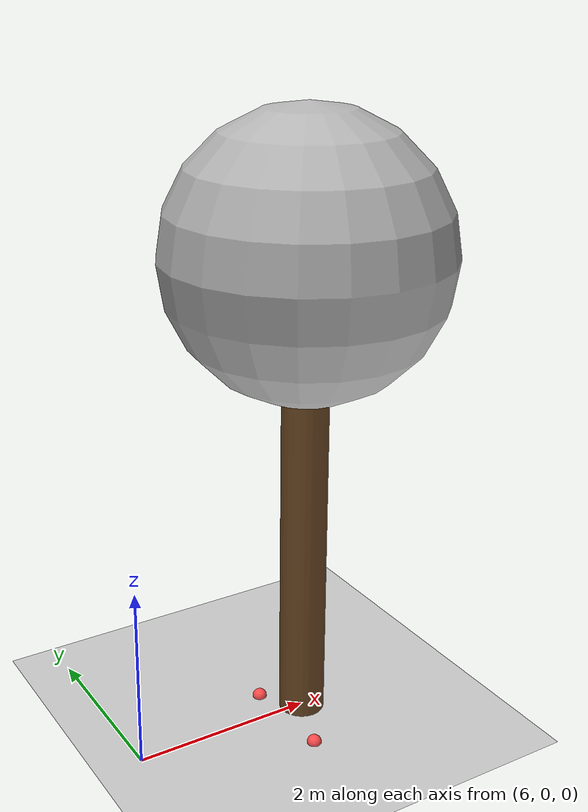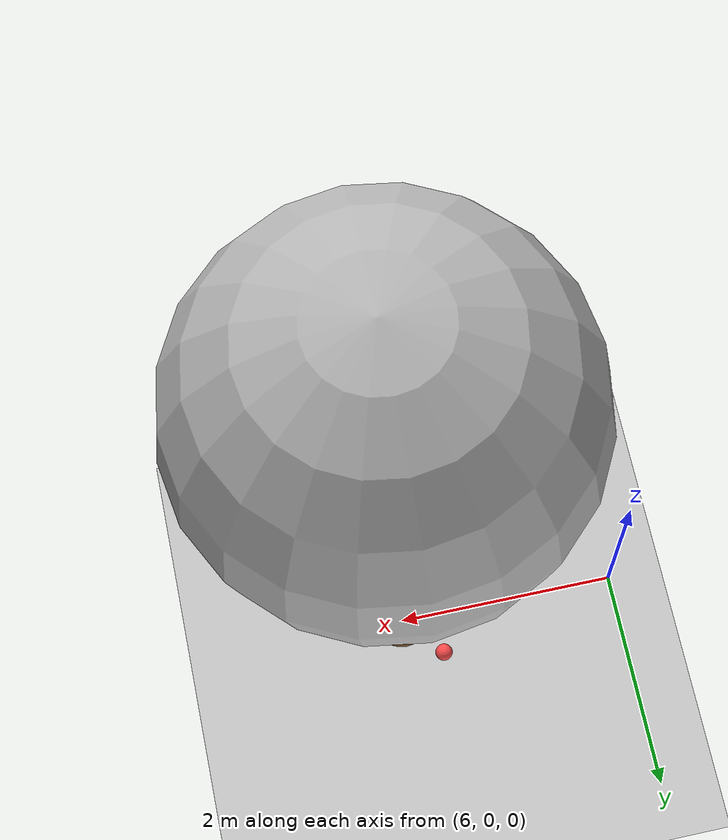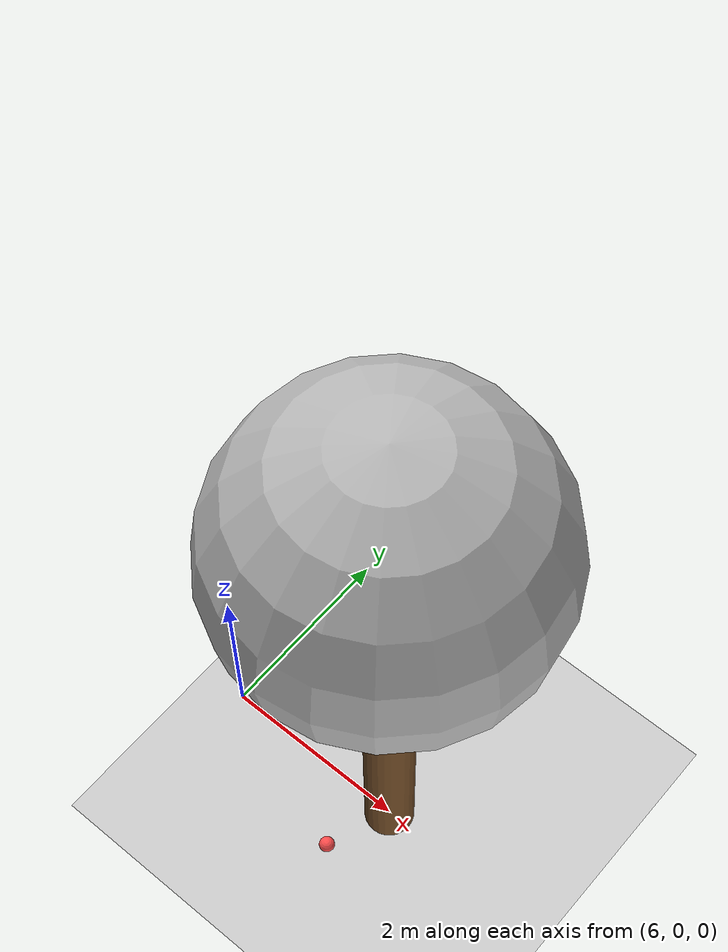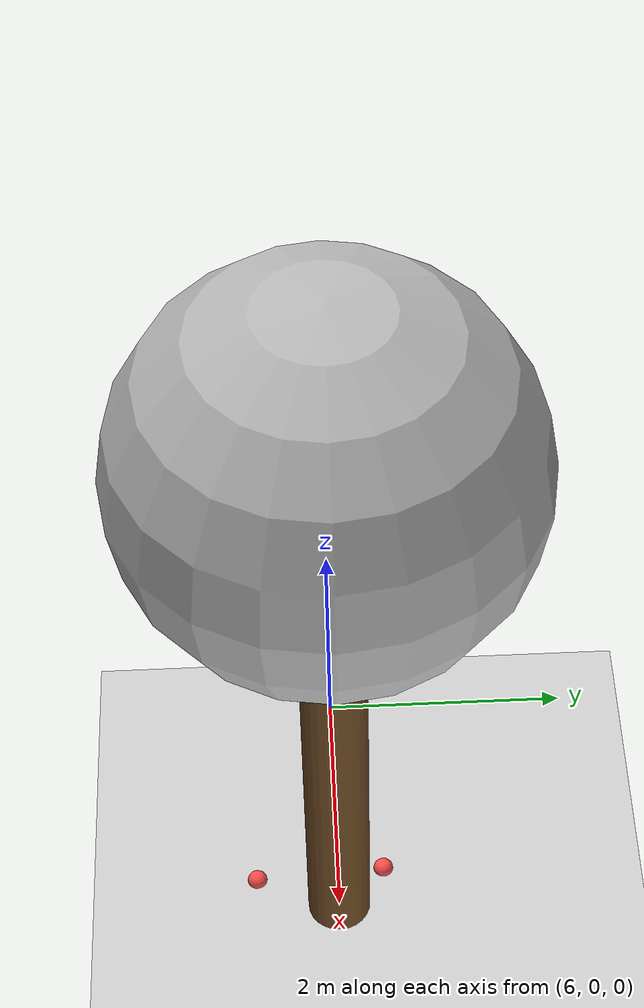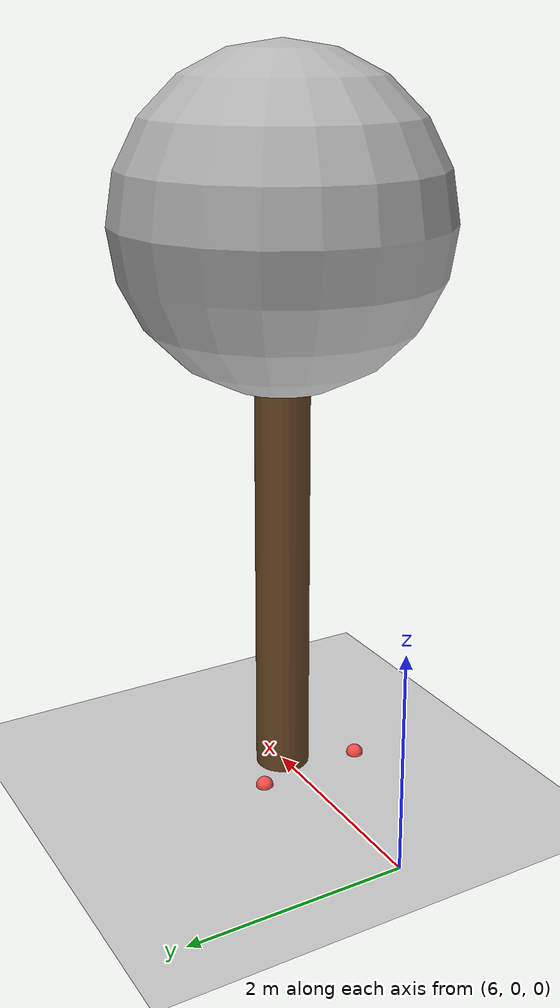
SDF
<sdf version="1.7">
 <world name="default">
  <model name="ground_plane">
   <static>1</static>
   <link name="link">
    <collision name="collision">
     <geometry><plane><normal>0 0 1</normal><size>100 100</size></plane></geometry>
     <surface>
      <contact><collide_bitmask>65535</collide_bitmask></contact>
      <friction><ode><mu>100</mu><mu2>50</mu2></ode></friction>
     </surface>
    </collision>
    <visual name="visual">
     <cast_shadows>0</cast_shadows>
     <geometry><plane><normal>0 0 1</normal><size>100 100</size></plane></geometry>
     <material>
      <script><uri>file://media/materials/scripts/gazebo.material</uri><name>Gazebo/Grey</name></script>
     </material>
    </visual>
   </link>
  </model>
  <model name="tree_simple_98">
   <static>1</static>
   <link name="link">
    <pose>0 0 0.1 0 -0 0</pose>
    <inertial>
     <mass>666</mass>
     <inertia>
      <ixx>0.0861167</ixx>
      <ixy>0</ixy>
      <ixz>0</ixz>
      <iyy>0.0861167</iyy>
      <iyz>0</iyz>
      <izz>0.0861167</izz>
     </inertia>
    </inertial>
    <collision name="collision_trunk">
     <pose>0 0 2 0 -0 0</pose>
     <geometry><cylinder><radius>0.25</radius><length>4</length></cylinder></geometry>
     <surface>
      <contact>
       <poissons_ratio>0.347</poissons_ratio>
       <elastic_modulus>8.8e+09</elastic_modulus>
       <ode><kp>100000</kp><kd>100</kd><max_vel>100</max_vel><min_depth>0.001</min_depth></ode>
      </contact>
      <friction>
       <torsional>
        <coefficient>1</coefficient>
        <use_patch_radius>0</use_patch_radius>
        <surface_radius>0.01</surface_radius>
       </torsional>
      </friction>
     </surface>
    </collision>
    <collision name="collision_treetop">
     <pose>0 0 5.2 0 -0 0</pose>
     <geometry><sphere><radius>1.5</radius></sphere></geometry>
     <surface>
      <contact>
       <poissons_ratio>0.347</poissons_ratio>
       <elastic_modulus>8.8e+09</elastic_modulus>
       <ode><kp>100000</kp><kd>100</kd><max_vel>100</max_vel><min_depth>0.001</min_depth></ode>
      </contact>
      <friction>
       <torsional>
        <coefficient>1</coefficient>
        <use_patch_radius>0</use_patch_radius>
        <surface_radius>0.01</surface_radius>
       </torsional>
      </friction>
     </surface>
    </collision>
    <visual name="trunk">
     <pose>0 0 2 0 -0 0</pose>
     <geometry><cylinder><radius>0.25</radius><length>4</length></cylinder></geometry>
     <material>
      <script>
       <uri>model://tree_simple/scripts</uri>
       <uri>model://tree_simple/materials/textures</uri>
       <name>TreeSimple/Trunk</name>
      </script>
     </material>
    </visual>
    <visual name="treetop">
     <pose>0 0 5.2 0 -0 0</pose>
     <geometry><sphere><radius>1.5</radius></sphere></geometry>
     <material>
      <script>
       <uri>model://tree_simple/scripts</uri>
       <uri>model://tree_simple/materials/textures</uri>
       <name>TreeSimple/Treetop</name>
      </script>
     </material>
    </visual>
   </link>
   <pose>8 0 -0.1 0 -0 0</pose>
  </model>
  <model name="seed_red_396">
   <link name="link">
    <inertial>
     <mass>1</mass>
     <inertia><ixx>0.1</ixx><ixy>0</ixy><ixz>0</ixz><iyy>0.1</iyy><iyz>0</iyz><izz>0.1</izz></inertia>
    </inertial>
    <visual name="visual">
     <geometry><sphere><radius>0.08</radius></sphere></geometry>
     <material>
      <script><name>Gazebo/Grey</name><uri>file://media/materials/scripts/gazebo.material</uri></script>
      <shader type="pixel"><normal_map>__default__</normal_map></shader>
      <ambient>1 0.3 0.3 1</ambient>
      <diffuse>0.7 0.7 0.7 1</diffuse>
      <specular>0.01 0.01 0.01 1</specular>
      <emissive>0 0 0 1</emissive>
     </material>
    </visual>
    <collision name="collision">
     <geometry><sphere><radius>0.0005</radius></sphere></geometry>
     <surface>
      <friction>
       <ode><mu>1</mu><mu2>1</mu2><fdir1>0 0 0</fdir1><slip1>0</slip1><slip2>0</slip2></ode>
       <torsional>
        <coefficient>1</coefficient>
        <patch_radius>0</patch_radius>
        <surface_radius>0</surface_radius>
        <use_patch_radius>1</use_patch_radius>
        <ode><slip>0</slip></ode>
       </torsional>
      </friction>
      <bounce><restitution_coefficient>0</restitution_coefficient><threshold>1e+06</threshold></bounce>
      <contact>
       <collide_without_contact>0</collide_without_contact>
       <collide_without_contact_bitmask>1</collide_without_contact_bitmask>
       <collide_bitmask>1</collide_bitmask>
       <ode>
        <soft_cfm>0</soft_cfm>
        <soft_erp>0.2</soft_erp>
        <kp>1e+13</kp>
        <kd>1</kd>
        <max_vel>0.01</max_vel>
        <min_depth>0</min_depth>
       </ode>
       <bullet>
        <split_impulse>1</split_impulse>
        <split_impulse_penetration_threshold>-0.01</split_impulse_penetration_threshold>
        <soft_cfm>0</soft_cfm>
        <soft_erp>0.2</soft_erp>
        <kp>1e+13</kp>
        <kd>1</kd>
       </bullet>
      </contact>
     </surface>
    </collision>
   </link>
   <static>0</static>
   <pose>7.67556 0.377008 0.0005 0 -0 0</pose>
  </model>
  <model name="seed_red_399">
   <link name="link">
    <inertial>
     <mass>1</mass>
     <inertia><ixx>0.1</ixx><ixy>0</ixy><ixz>0</ixz><iyy>0.1</iyy><iyz>0</iyz><izz>0.1</izz></inertia>
    </inertial>
    <visual name="visual">
     <geometry><sphere><radius>0.08</radius></sphere></geometry>
     <material>
      <script><name>Gazebo/Grey</name><uri>file://media/materials/scripts/gazebo.material</uri></script>
      <shader type="pixel"><normal_map>__default__</normal_map></shader>
      <ambient>1 0.3 0.3 1</ambient>
      <diffuse>0.7 0.7 0.7 1</diffuse>
      <specular>0.01 0.01 0.01 1</specular>
      <emissive>0 0 0 1</emissive>
     </material>
    </visual>
    <collision name="collision">
     <geometry><sphere><radius>0.0005</radius></sphere></geometry>
     <surface>
      <friction>
       <ode><mu>1</mu><mu2>1</mu2><fdir1>0 0 0</fdir1><slip1>0</slip1><slip2>0</slip2></ode>
       <torsional>
        <coefficient>1</coefficient>
        <patch_radius>0</patch_radius>
        <surface_radius>0</surface_radius>
        <use_patch_radius>1</use_patch_radius>
        <ode><slip>0</slip></ode>
       </torsional>
      </friction>
      <bounce><restitution_coefficient>0</restitution_coefficient><threshold>1e+06</threshold></bounce>
      <contact>
       <collide_without_contact>0</collide_without_contact>
       <collide_without_contact_bitmask>1</collide_without_contact_bitmask>
       <collide_bitmask>1</collide_bitmask>
       <ode>
        <soft_cfm>0</soft_cfm>
        <soft_erp>0.2</soft_erp>
        <kp>1e+13</kp>
        <kd>1</kd>
        <max_vel>0.01</max_vel>
        <min_depth>0</min_depth>
       </ode>
       <bullet>
        <split_impulse>1</split_impulse>
        <split_impulse_penetration_threshold>-0.01</split_impulse_penetration_threshold>
        <soft_cfm>0</soft_cfm>
        <soft_erp>0.2</soft_erp>
        <kp>1e+13</kp>
        <kd>1</kd>
       </bullet>
      </contact>
     </surface>
    </collision>
   </link>
   <static>0</static>
   <pose>7.74238 -0.665815 0.0005 0 -0 0</pose>
  </model>
 </world>
</sdf>
